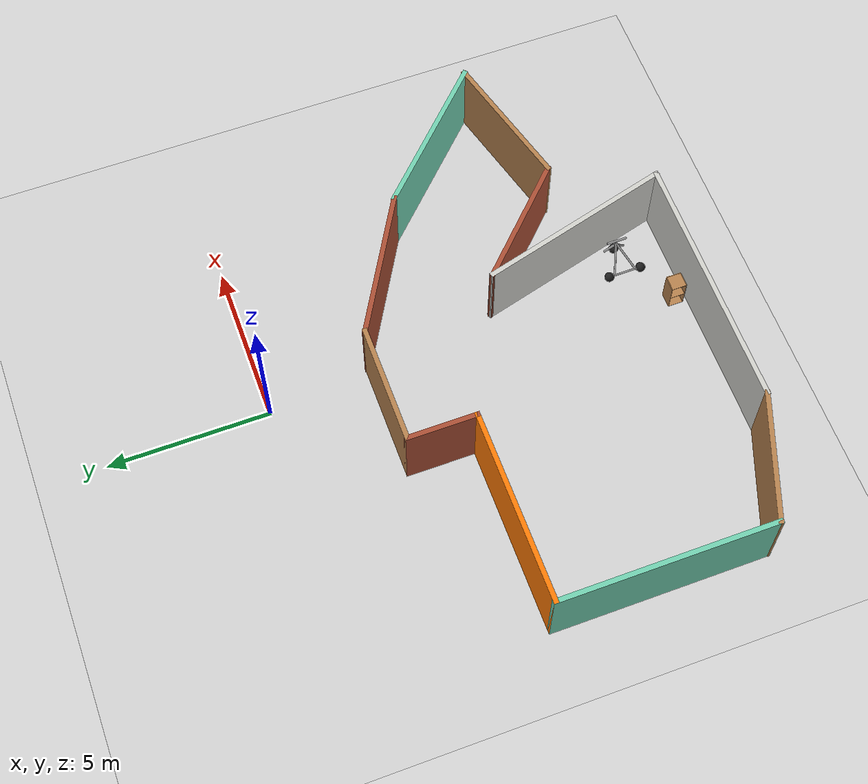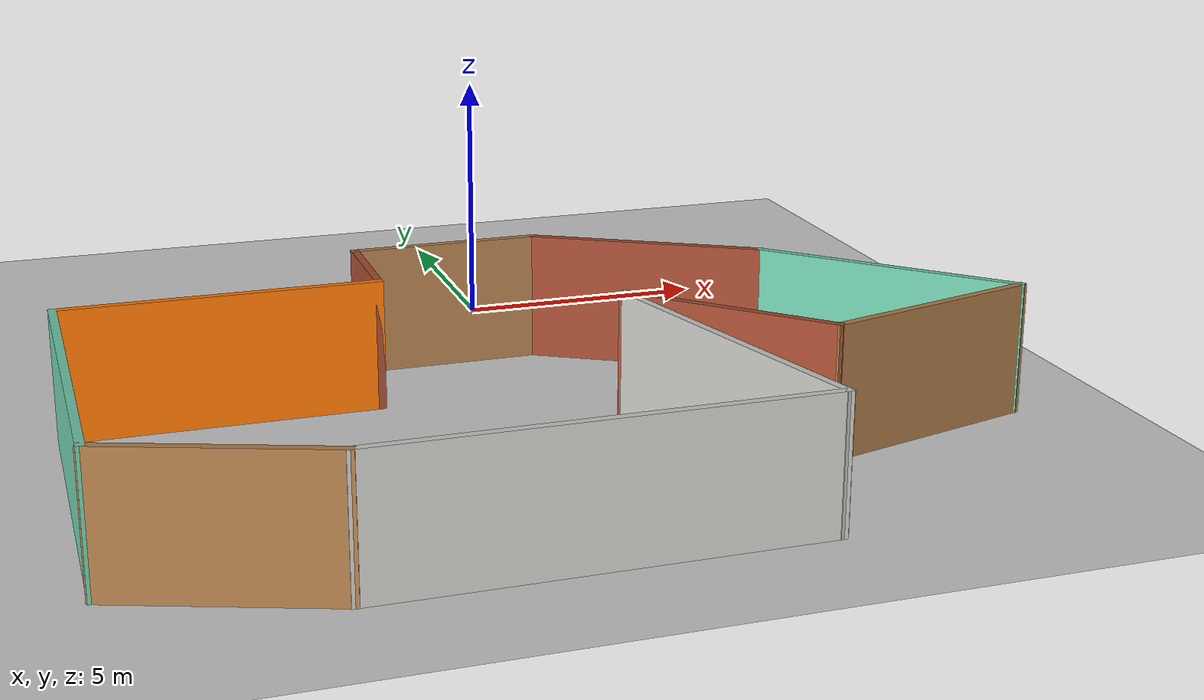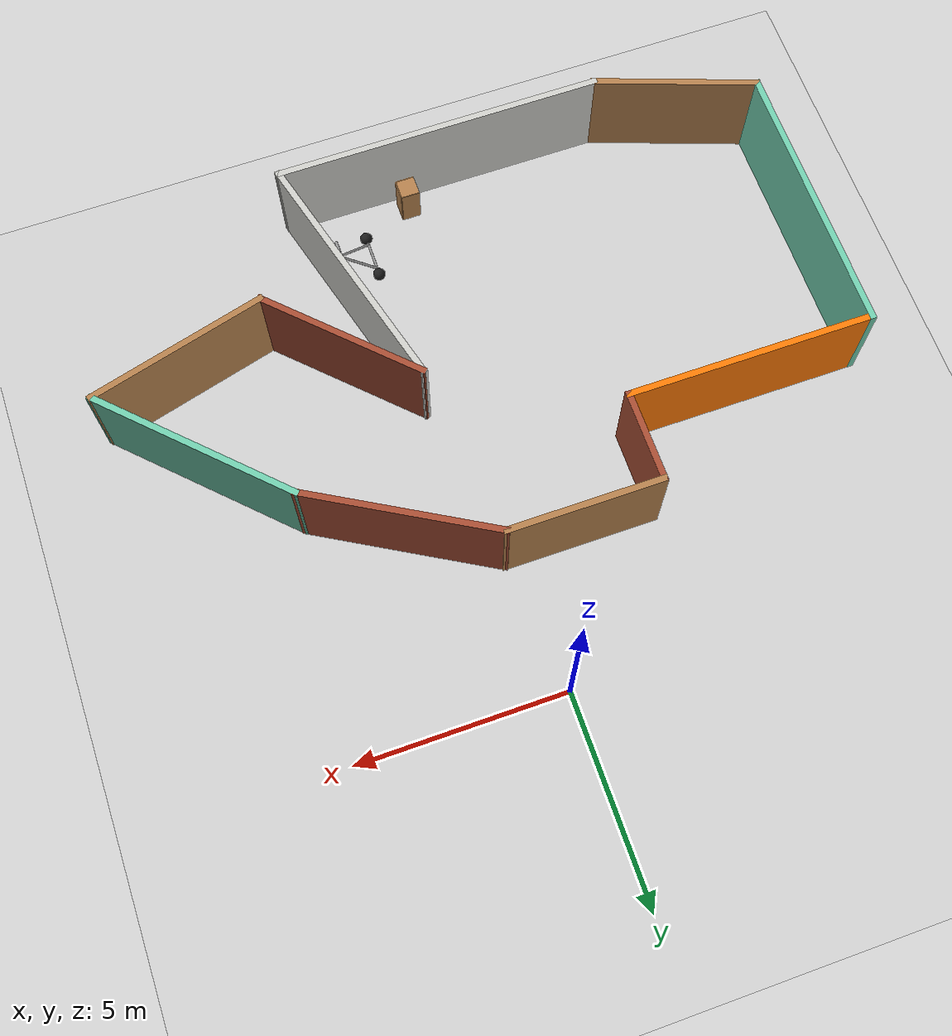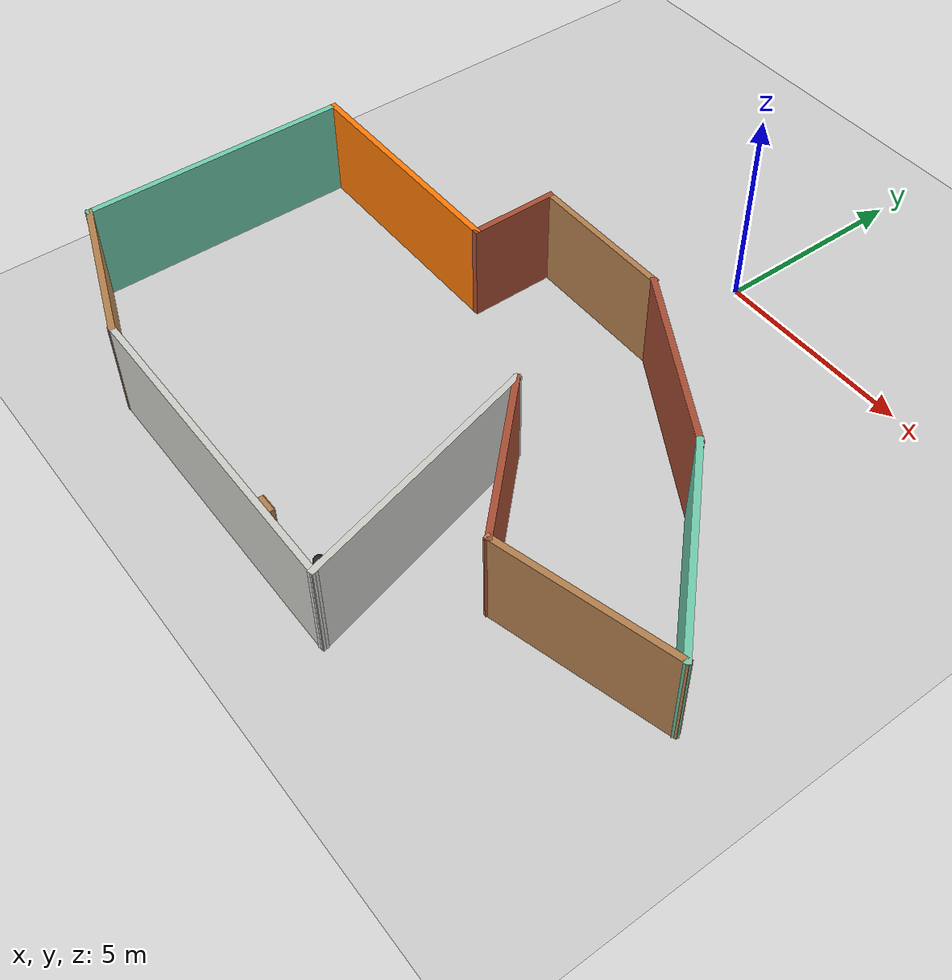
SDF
<sdf version="1.7">
 <world name="default">
  <model name="ground_plane">
   <pose>-10 -10 0 0 -0 0</pose>
   <static>1</static>
   <link name="link">
    <collision name="collision">
     <geometry><plane><normal>0 0 1</normal><size>10 10</size></plane></geometry>
     <surface><friction><ode><mu>100</mu><mu2>50</mu2></ode></friction></surface>
    </collision>
    <visual name="visual">
     <cast_shadows>0</cast_shadows>
     <geometry><plane><normal>0 0 1</normal><size>10 10</size></plane></geometry>
     <material>
      <script><uri>file://media/materials/scripts/gazebo.material</uri><name>Gazebo/Motorway</name></script>
     </material>
    </visual>
   </link>
  </model>
  <model name="test_world">
   <pose>-0.545 -6.65557 0 0 -0 0</pose>
   <link name="Wall_0">
    <collision name="Wall_0_Collision">
     <geometry><box><size>6.75 0.15 2.5</size></box></geometry>
     <pose>0 0 1.25 0 -0 0</pose>
    </collision>
    <visual name="Wall_0_Visual">
     <pose>0 0 1.25 0 -0 0</pose>
     <geometry><box><size>6.75 0.15 2.5</size></box></geometry>
     <material>
      <script><uri>file://media/materials/scripts/gazebo.material</uri><name>Gazebo/Grey</name></script>
      <ambient>0.435294 0.796078 0.67451 1</ambient>
     </material>
     <meta><layer>0</layer></meta>
    </visual>
    <pose>-8.525 -1.93443 0 0 -0 1.5708</pose>
   </link>
   <link name="Wall_1">
    <collision name="Wall_1_Collision">
     <geometry><box><size>6 0.15 2.5</size></box></geometry>
     <pose>0 0 1.25 0 -0 0</pose>
    </collision>
    <visual name="Wall_1_Visual">
     <pose>0 0 1.25 0 -0 0</pose>
     <geometry><box><size>6 0.15 2.5</size></box></geometry>
     <material>
      <script><uri>file://media/materials/scripts/gazebo.material</uri><name>Gazebo/Grey</name></script>
      <ambient>0.996078 0.47451 0.0196078 1</ambient>
     </material>
     <meta><layer>0</layer></meta>
    </visual>
    <pose>-5.6 1.36557 0 0 -0 0</pose>
   </link>
   <link name="Wall_10">
    <collision name="Wall_10_Collision">
     <geometry><box><size>4.04987 0.15 2.5</size></box></geometry>
     <pose>0 0 1.25 0 -0 0</pose>
    </collision>
    <visual name="Wall_10_Visual">
     <pose>0 0 1.25 0 -0 0</pose>
     <geometry><box><size>4.04987 0.15 2.5</size></box></geometry>
     <material>
      <script><uri>file://media/materials/scripts/gazebo.material</uri><name>Gazebo/Wood</name></script>
      <ambient>1 1 1 1</ambient>
     </material>
     <meta><layer>0</layer></meta>
    </visual>
    <pose>-6.69108 -5.89699 0 0 -0 2.7949</pose>
   </link>
   <link name="Wall_2">
    <collision name="Wall_2_Collision">
     <geometry><box><size>2.25 0.15 2.5</size></box></geometry>
     <pose>0 0 1.25 0 -0 0</pose>
    </collision>
    <visual name="Wall_2_Visual">
     <pose>0 0 1.25 0 -0 0</pose>
     <geometry><box><size>2.25 0.15 2.5</size></box></geometry>
     <material>
      <script><uri>file://media/materials/scripts/gazebo.material</uri><name>Gazebo/Bricks</name></script>
      <ambient>1 1 1 1</ambient>
     </material>
     <meta><layer>0</layer></meta>
    </visual>
    <pose>-2.675 2.41557 0 0 -0 1.5708</pose>
   </link>
   <link name="Wall_3">
    <collision name="Wall_3_Collision">
     <geometry><box><size>3.75 0.15 2.5</size></box></geometry>
     <pose>0 0 1.25 0 -0 0</pose>
    </collision>
    <visual name="Wall_3_Visual">
     <pose>0 0 1.25 0 -0 0</pose>
     <geometry><box><size>3.75 0.15 2.5</size></box></geometry>
     <material>
      <script><uri>file://media/materials/scripts/gazebo.material</uri><name>Gazebo/Wood</name></script>
      <ambient>1 1 1 1</ambient>
     </material>
     <meta><layer>0</layer></meta>
    </visual>
    <pose>-0.875002 3.46557 0 0 -0 0</pose>
   </link>
   <link name="Wall_4">
    <collision name="Wall_4_Collision">
     <geometry><box><size>4.75 0.15 2.5</size></box></geometry>
     <pose>0 0 1.25 0 -0 0</pose>
    </collision>
    <visual name="Wall_4_Visual">
     <pose>0 0 1.25 0 -0 0</pose>
     <geometry><box><size>4.75 0.15 2.5</size></box></geometry>
     <material>
      <script><uri>file://media/materials/scripts/gazebo.material</uri><name>Gazebo/Bricks</name></script>
      <ambient>1 1 1 1</ambient>
     </material>
     <meta><layer>0</layer></meta>
    </visual>
    <pose>2.91686 2.31557 0 0 -0 -0.523599</pose>
   </link>
   <link name="Wall_5">
    <collision name="Wall_5_Collision">
     <geometry><box><size>5.25 0.15 2.5</size></box></geometry>
     <pose>0 0 1.25 0 -0 0</pose>
    </collision>
    <visual name="Wall_5_Visual">
     <pose>0 0 1.25 0 -0 0</pose>
     <geometry><box><size>5.25 0.15 2.5</size></box></geometry>
     <material>
      <script><uri>file://media/materials/scripts/gazebo.material</uri><name>Gazebo/Grey</name></script>
      <ambient>0.435294 0.796078 0.67451 1</ambient>
     </material>
     <meta><layer>0</layer></meta>
    </visual>
    <pose>6.71184 -0.637553 0 0 -0 -0.785398</pose>
   </link>
   <link name="Wall_6">
    <collision name="Wall_6_Collision">
     <geometry><box><size>4.5 0.15 2.5</size></box></geometry>
     <pose>0 0 1.25 0 -0 0</pose>
    </collision>
    <visual name="Wall_6_Visual">
     <pose>0 0 1.25 0 -0 0</pose>
     <geometry><box><size>4.5 0.15 2.5</size></box></geometry>
     <material>
      <script><uri>file://media/materials/scripts/gazebo.material</uri><name>Gazebo/Wood</name></script>
      <ambient>1 1 1 1</ambient>
     </material>
     <meta><layer>0</layer></meta>
    </visual>
    <pose>6.41407 -3.00361 0 0 -0 -2.87979</pose>
   </link>
   <link name="Wall_7">
    <collision name="Wall_7_Collision">
     <geometry><box><size>4.25 0.15 2.5</size></box></geometry>
     <pose>0 0 1.25 0 -0 0</pose>
    </collision>
    <visual name="Wall_7_Visual">
     <pose>0 0 1.25 0 -0 0</pose>
     <geometry><box><size>4.25 0.15 2.5</size></box></geometry>
     <material>
      <script><uri>file://media/materials/scripts/gazebo.material</uri><name>Gazebo/Bricks</name></script>
      <ambient>1 1 1 1</ambient>
     </material>
     <meta><layer>0</layer></meta>
    </visual>
    <pose>2.86361 -2.11697 0 0 -0 2.35619</pose>
   </link>
   <link name="Wall_8">
    <collision name="Wall_8_Collision">
     <geometry><box><size>6.25 0.15 2.5</size></box></geometry>
     <pose>0 0 1.25 0 -0 0</pose>
    </collision>
    <visual name="Wall_8_Visual">
     <pose>0 0 1.25 0 -0 0</pose>
     <geometry><box><size>6.25 0.15 2.5</size></box></geometry>
     <material>
      <script><uri>file://media/materials/scripts/gazebo.material</uri><name>Gazebo/CeilingTiled</name></script>
      <ambient>1 1 1 1</ambient>
     </material>
     <meta><layer>0</layer></meta>
    </visual>
    <pose>2.20344 -3.61347 0 0 -0 -1.309</pose>
   </link>
   <link name="Wall_9">
    <collision name="Wall_9_Collision">
     <geometry><box><size>8 0.15 2.5</size></box></geometry>
     <pose>0 0 1.25 0 -0 0</pose>
    </collision>
    <visual name="Wall_9_Visual">
     <pose>0 0 1.25 0 -0 0</pose>
     <geometry><box><size>8 0.15 2.5</size></box></geometry>
     <material>
      <script><uri>file://media/materials/scripts/gazebo.material</uri><name>Gazebo/CeilingTiled</name></script>
      <ambient>1 1 1 1</ambient>
     </material>
     <meta><layer>0</layer></meta>
    </visual>
    <pose>-0.93216 -6.55955 0 0 -0 3.14159</pose>
   </link>
   <static>1</static>
  </model>
  <model name="cabinet">
   <static>1</static>
   <link name="cabinet_bottom_plate">
    <inertial>
     <pose>0 0 -1 0 -0 0</pose>
     <inertia><ixx>2.05</ixx><ixy>0</ixy><ixz>0</ixz><iyy>2.05</iyy><iyz>0</iyz><izz>2.05</izz></inertia>
     <mass>25</mass>
    </inertial>
    <collision name="cabinet_bottom_plate_geom">
     <pose>0 0 0.01 0 -0 0</pose>
     <geometry><box><size>0.45 0.45 0.02</size></box></geometry>
    </collision>
    <visual name="cabinet_bottom_plate_geom_visual">
     <pose>0 0 0.01 0 -0 0</pose>
     <geometry><box><size>0.45 0.45 0.02</size></box></geometry>
     <material>
      <script><uri>file://media/materials/scripts/gazebo.material</uri><name>Gazebo/Wood</name></script>
     </material>
    </visual>
    <collision name="cabinet_bottom_plate_geom_cabinet_back_plate">
     <pose>0.235 0 0.51 0 -0 0</pose>
     <geometry><box><size>0.02 0.45 1.02</size></box></geometry>
    </collision>
    <visual name="cabinet_bottom_plate_geom_cabinet_back_plate_visual">
     <pose>0.235 0 0.51 0 -0 0</pose>
     <geometry><box><size>0.02 0.45 1.02</size></box></geometry>
     <material>
      <script><uri>file://media/materials/scripts/gazebo.material</uri><name>Gazebo/Wood</name></script>
     </material>
    </visual>
    <collision name="cabinet_bottom_plate_geom_cabinet_left_plate">
     <pose>0 0.235 0.51 0 -0 0</pose>
     <geometry><box><size>0.45 0.02 1.02</size></box></geometry>
    </collision>
    <visual name="cabinet_bottom_plate_geom_cabinet_left_plate_visual">
     <pose>0 0.235 0.51 0 -0 0</pose>
     <geometry><box><size>0.45 0.02 1.02</size></box></geometry>
     <material>
      <script><uri>file://media/materials/scripts/gazebo.material</uri><name>Gazebo/Wood</name></script>
     </material>
    </visual>
    <collision name="cabinet_bottom_plate_geom_cabinet_middle_plate">
     <pose>0 0 0.51 0 -0 0</pose>
     <geometry><box><size>0.45 0.45 0.02</size></box></geometry>
    </collision>
    <visual name="cabinet_bottom_plate_geom_cabinet_middle_plate_visual">
     <pose>0 0 0.51 0 -0 0</pose>
     <geometry><box><size>0.45 0.45 0.02</size></box></geometry>
     <material>
      <script><uri>file://media/materials/scripts/gazebo.material</uri><name>Gazebo/Wood</name></script>
     </material>
    </visual>
    <collision name="cabinet_bottom_plate_geom_cabinet_right_plate">
     <pose>0 -0.235 0.51 0 -0 0</pose>
     <geometry><box><size>0.45 0.02 1.02</size></box></geometry>
    </collision>
    <visual name="cabinet_bottom_plate_geom_cabinet_right_plate_visual">
     <pose>0 -0.235 0.51 0 -0 0</pose>
     <geometry><box><size>0.45 0.02 1.02</size></box></geometry>
     <material>
      <script><uri>file://media/materials/scripts/gazebo.material</uri><name>Gazebo/Wood</name></script>
     </material>
    </visual>
    <collision name="cabinet_bottom_plate_geom_cabinet_top_plate">
     <pose>0 0 1.01 0 -0 0</pose>
     <geometry><box><size>0.45 0.45 0.02</size></box></geometry>
    </collision>
    <visual name="cabinet_bottom_plate_geom_cabinet_top_plate_visual">
     <pose>0 0 1.01 0 -0 0</pose>
     <geometry><box><size>0.45 0.45 0.02</size></box></geometry>
     <material>
      <script><uri>file://media/materials/scripts/gazebo.material</uri><name>Gazebo/Wood</name></script>
     </material>
    </visual>
   </link>
   <pose>-0.502873 -12.7733 0 0 -0 0</pose>
  </model>
  <model name="trisphere_cycle">
   <link name="frame">
    <pose>-0.408559 0 0.385023 0 -0.522021 0</pose>
    <inertial>
     <mass>10</mass>
     <inertia><ixx>0.228</ixx><iyy>0.743521</iyy><izz>0.965521</izz><ixy>0</ixy><ixz>0</ixz><iyz>0</iyz></inertia>
    </inertial>
    <collision name="axle_collision">
     <pose>-0.471335 0 0 1.5708 -0 0</pose>
     <geometry><cylinder><length>1.03923</length><radius>0.03</radius></cylinder></geometry>
    </collision>
    <visual name="axle_visual">
     <pose>-0.471335 0 0 1.5708 -0 0</pose>
     <geometry><cylinder><length>1.03923</length><radius>0.03</radius></cylinder></geometry>
     <material>
      <script><uri>file://media/materials/scripts/gazebo.material</uri><name>Gazebo/Grey</name></script>
     </material>
    </visual>
    <collision name="frame_left_collision">
     <pose>0 0.171552 0 -2.79253 1.57079 3.14159</pose>
     <geometry><cylinder><length>1.00317</length><radius>0.03</radius></cylinder></geometry>
    </collision>
    <visual name="frame_left_visual">
     <pose>0 0.171552 0 -2.79253 1.57079 3.14159</pose>
     <geometry><cylinder><length>1.00317</length><radius>0.03</radius></cylinder></geometry>
     <material>
      <script><uri>file://media/materials/scripts/gazebo.material</uri><name>Gazebo/Grey</name></script>
     </material>
    </visual>
    <collision name="frame_right_collision">
     <pose>0 -0.171552 0 2.79253 1.57079 -3.14159</pose>
     <geometry><cylinder><length>1.00317</length><radius>0.03</radius></cylinder></geometry>
    </collision>
    <visual name="frame_right_visual">
     <pose>0 -0.171552 0 2.79253 1.57079 -3.14159</pose>
     <geometry><cylinder><length>1.00317</length><radius>0.03</radius></cylinder></geometry>
     <material>
      <script><uri>file://media/materials/scripts/gazebo.material</uri><name>Gazebo/Grey</name></script>
     </material>
    </visual>
   </link>
   <link name="fork">
    <pose>0.041441 0 0.385023 0 -0.174533 0</pose>
    <inertial>
     <mass>3</mass>
     <inertia>
      <ixx>0.158203</ixx>
      <iyy>0.0583594</iyy>
      <izz>0.102656</izz>
      <ixy>0</ixy>
      <ixz>0</ixz>
      <iyz>0</iyz>
     </inertia>
    </inertial>
    <collision name="handlebars_collision">
     <pose>0 0 0.397748 1.5708 -0 0</pose>
     <geometry><cylinder><length>0.636396</length><radius>0.0375</radius></cylinder></geometry>
    </collision>
    <visual name="handlebars_visual">
     <pose>0 0 0.397748 1.5708 -0 0</pose>
     <geometry><cylinder><length>0.636396</length><radius>0.0375</radius></cylinder></geometry>
     <material>
      <script><uri>file://media/materials/scripts/gazebo.material</uri><name>Gazebo/Grey</name></script>
     </material>
    </visual>
    <collision name="headtube_collision">
     <pose>0 0 0.238649 0 -0 0</pose>
     <geometry><cylinder><length>0.318198</length><radius>0.0375</radius></cylinder></geometry>
    </collision>
    <visual name="headtube_visual">
     <pose>0 0 0.238649 0 -0 0</pose>
     <geometry><cylinder><length>0.318198</length><radius>0.0375</radius></cylinder></geometry>
     <material>
      <script><uri>file://media/materials/scripts/gazebo.material</uri><name>Gazebo/Grey</name></script>
     </material>
    </visual>
    <collision name="spindle_collision">
     <pose>0 0 -0.238649 1.5708 -0 0</pose>
     <geometry><cylinder><length>0.636396</length><radius>0.015</radius></cylinder></geometry>
    </collision>
    <visual name="spindle_visual">
     <pose>0 0 -0.238649 1.5708 -0 0</pose>
     <geometry><cylinder><length>0.636396</length><radius>0.015</radius></cylinder></geometry>
     <material>
      <script><uri>file://media/materials/scripts/gazebo.material</uri><name>Gazebo/Grey</name></script>
     </material>
    </visual>
    <collision name="fork_left_collision">
     <pose>0 0.159099 -0.07955 0.785398 -0 0</pose>
     <geometry><cylinder><length>0.45</length><radius>0.0375</radius></cylinder></geometry>
    </collision>
    <visual name="fork_left_visual">
     <pose>0 0.159099 -0.07955 0.785398 -0 0</pose>
     <geometry><cylinder><length>0.45</length><radius>0.0375</radius></cylinder></geometry>
     <material>
      <script><uri>file://media/materials/scripts/gazebo.material</uri><name>Gazebo/Grey</name></script>
     </material>
    </visual>
    <collision name="fork_right_collision">
     <pose>0 -0.159099 -0.07955 -0.785398 0 0</pose>
     <geometry><cylinder><length>0.45</length><radius>0.0375</radius></cylinder></geometry>
    </collision>
    <visual name="fork_right_visual">
     <pose>0 -0.159099 -0.07955 -0.785398 0 0</pose>
     <geometry><cylinder><length>0.45</length><radius>0.0375</radius></cylinder></geometry>
     <material>
      <script><uri>file://media/materials/scripts/gazebo.material</uri><name>Gazebo/Grey</name></script>
     </material>
    </visual>
   </link>
   <link name="wheel_front">
    <pose>0.082882 0 0.15 0 -0 0</pose>
    <inertial>
     <mass>0.5</mass>
     <inertia><ixx>0.0045</ixx><iyy>0.0045</iyy><izz>0.0045</izz><ixy>0</ixy><ixz>0</ixz><iyz>0</iyz></inertia>
    </inertial>
    <collision name="collision">
     <geometry><sphere><radius>0.15</radius></sphere></geometry>
     <surface><contact><ode><kp>1e+08</kp><kd>1</kd><min_depth>0.0005</min_depth></ode></contact></surface>
    </collision>
    <visual name="visual">
     <geometry><sphere><radius>0.15</radius></sphere></geometry>
     <material>
      <script><uri>file://media/materials/scripts/gazebo.material</uri><name>Gazebo/Black</name></script>
     </material>
    </visual>
   </link>
   <joint name="wheel_front_steer" type="revolute">
    <parent>frame</parent>
    <child>fork</child>
    <axis>
     <xyz>0 0 1</xyz>
     <limit><lower>-0.959931</lower><upper>0.959931</upper></limit>
     <dynamics><spring_reference>0</spring_reference><spring_stiffness>0</spring_stiffness></dynamics>
    </axis>
   </joint>
   <joint name="wheel_front_spin" type="revolute">
    <parent>fork</parent>
    <child>wheel_front</child>
    <axis>
     <xyz>0 1 0</xyz>
     <limit><lower>-1e+16</lower><upper>1e+16</upper></limit>
     <dynamics><spring_reference>0</spring_reference><spring_stiffness>0</spring_stiffness></dynamics>
    </axis>
   </joint>
   <link name="wheel_rear_left">
    <pose>-0.817118 0.519615 0.15 0 -0 0</pose>
    <inertial>
     <mass>0.5</mass>
     <inertia><ixx>0.0045</ixx><iyy>0.0045</iyy><izz>0.0045</izz><ixy>0</ixy><ixz>0</ixz><iyz>0</iyz></inertia>
    </inertial>
    <collision name="collision">
     <geometry><sphere><radius>0.15</radius></sphere></geometry>
     <surface><contact><ode><kp>1e+08</kp><kd>1</kd><min_depth>0.0005</min_depth></ode></contact></surface>
    </collision>
    <visual name="visual">
     <geometry><sphere><radius>0.15</radius></sphere></geometry>
     <material>
      <script><uri>file://media/materials/scripts/gazebo.material</uri><name>Gazebo/Black</name></script>
     </material>
    </visual>
   </link>
   <joint name="wheel_rear_left_spin" type="revolute">
    <parent>frame</parent>
    <child>wheel_rear_left</child>
    <axis>
     <xyz>0 1 0</xyz>
     <limit><lower>-1e+16</lower><upper>1e+16</upper></limit>
     <dynamics><spring_reference>0</spring_reference><spring_stiffness>0</spring_stiffness></dynamics>
    </axis>
   </joint>
   <link name="wheel_rear_right">
    <pose>-0.817118 -0.519615 0.15 0 -0 0</pose>
    <inertial>
     <mass>0.5</mass>
     <inertia><ixx>0.0045</ixx><iyy>0.0045</iyy><izz>0.0045</izz><ixy>0</ixy><ixz>0</ixz><iyz>0</iyz></inertia>
    </inertial>
    <collision name="collision">
     <geometry><sphere><radius>0.15</radius></sphere></geometry>
     <surface><contact><ode><kp>1e+08</kp><kd>1</kd><min_depth>0.0005</min_depth></ode></contact></surface>
    </collision>
    <visual name="visual">
     <geometry><sphere><radius>0.15</radius></sphere></geometry>
     <material>
      <script><uri>file://media/materials/scripts/gazebo.material</uri><name>Gazebo/Black</name></script>
     </material>
    </visual>
   </link>
   <joint name="wheel_rear_right_spin" type="revolute">
    <parent>frame</parent>
    <child>wheel_rear_right</child>
    <axis>
     <xyz>0 1 0</xyz>
     <limit><lower>-1e+16</lower><upper>1e+16</upper></limit>
     <dynamics><spring_reference>0</spring_reference><spring_stiffness>0</spring_stiffness></dynamics>
    </axis>
   </joint>
   <pose>1.59558 -11.7159 -0.000501 0 1e-06 -0.000132</pose>
  </model>
 </world>
</sdf>
